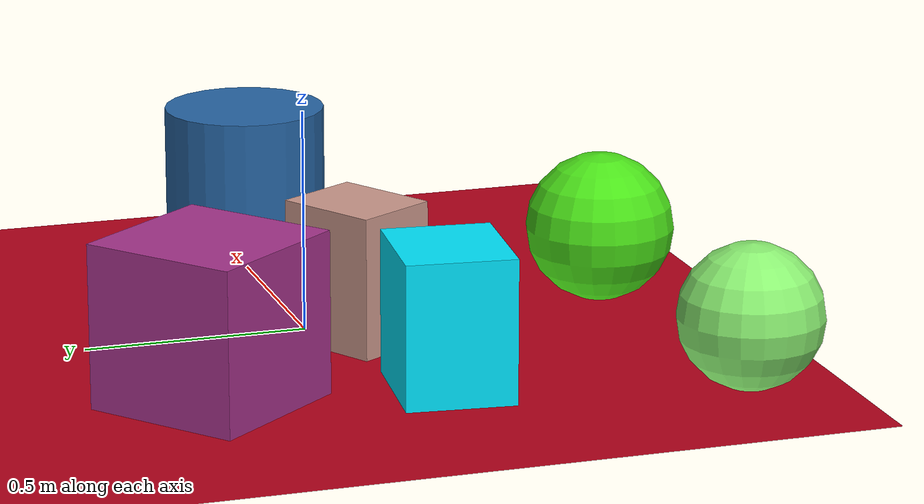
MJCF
<mujoco>
   <asset>
<texture type="skybox" builtin="gradient" rgb1="0.0 1.0 0.5" rgb2="0.0 0.8 0.7" width="500" height="500"/>
<texture name="checker_0" builtin="checker" rgb1="0.6 0.1 1.0" rgb2="0.7 0.3 0.1" width="500" height="500"/>
<texture name="gradient_1" builtin="gradient" rgb1="0.7 0.5 0.9" rgb2="0.9 0.7 0.2" width="500" height="500"/>
<texture name="flat_2" builtin="flat" rgb1="0.0 0.9 1.0" rgb2="0.0 0.9 1.0"  width="500" height="500"/>
<texture name="checker_3" builtin="checker" rgb1="0.2 0.8 0.6" rgb2="0.1 0.0 0.7" width="500" height="500"/>
<texture name="gradient_4" builtin="gradient" rgb1="0.5 1.0 0.6" rgb2="0.6 0.9 0.3" width="500" height="500"/>
<texture name="flat_5" builtin="flat" rgb1="0.3 0.9 0.1" rgb2="0.3 0.9 0.1"  width="500" height="500"/><material name="checker_0_mat" reflectance="0.28370944520351626" texrepeat="7 7" texture="checker_0" texuniform="false" />
<material name="gradient_1_mat" reflectance="0.03289190920039908" texture="gradient_1" texuniform="true"/>
<material name="flat_2_mat" reflectance="0.31674632101080935" texture="flat_2" texuniform="true"/>
<material name="checker_3_mat" reflectance="0.6066878054229132" texrepeat="9 9" texture="checker_3" texuniform="false" />
<material name="gradient_4_mat" reflectance="0.22032446156996466" texture="gradient_4" texuniform="true"/>
<material name="flat_5_mat" reflectance="0.6925974178992917" texture="flat_5" texuniform="true"/>
   </asset>

   <worldbody>
     <geom type="plane" size="1 1 0.1" rgba="0.7 0.0 0.1 1" />
<light pos="0.9986545483920466 -0.4491210142827009 2" dir="0 0 -1" cutoff="90" diffuse="1 1 1" specular="1 1 1"/>
<light pos="0.1357855794483218 0.45457736751228195 2" dir="0 0 -1" cutoff="90" diffuse="1 1 1" specular="1 1 1"/>
<geom type="box" pos="-0.42 0.32 0.18" size="0.18 0.18 0.18" material="checker_0_mat" euler="0 0 39" />
<geom type="box" pos="-0.11 -0.09 0.16" size="0.12 0.1 0.16" material="gradient_1_mat" euler="0 0 31" />
<geom type="box" pos="-0.49 -0.18 0.16" size="0.12 0.14 0.16" material="flat_2_mat" euler="0 0 84" />
<geom type="cylinder" pos="0.7 -0.05 0.17" size="0.19 0.17 0.17" material="checker_3_mat" euler="0 0 31" />
<geom type="sphere" pos="-0.68 -0.79 0.16" size="0.16 0.16 0.16" material="gradient_4_mat" euler="0 0 78" />
<geom type="sphere" pos="0.03 -0.71 0.17" size="0.17 0.17 0.17" material="flat_5_mat" euler="0 0 10" /><camera euler="60 0 180" fovy="60" name="camera1" pos="-0.2 -1.5 1"></camera>   </worldbody>
   <visual>
      <headlight diffuse="0.7 0.7 0.7"/>
   </visual>
</mujoco>
